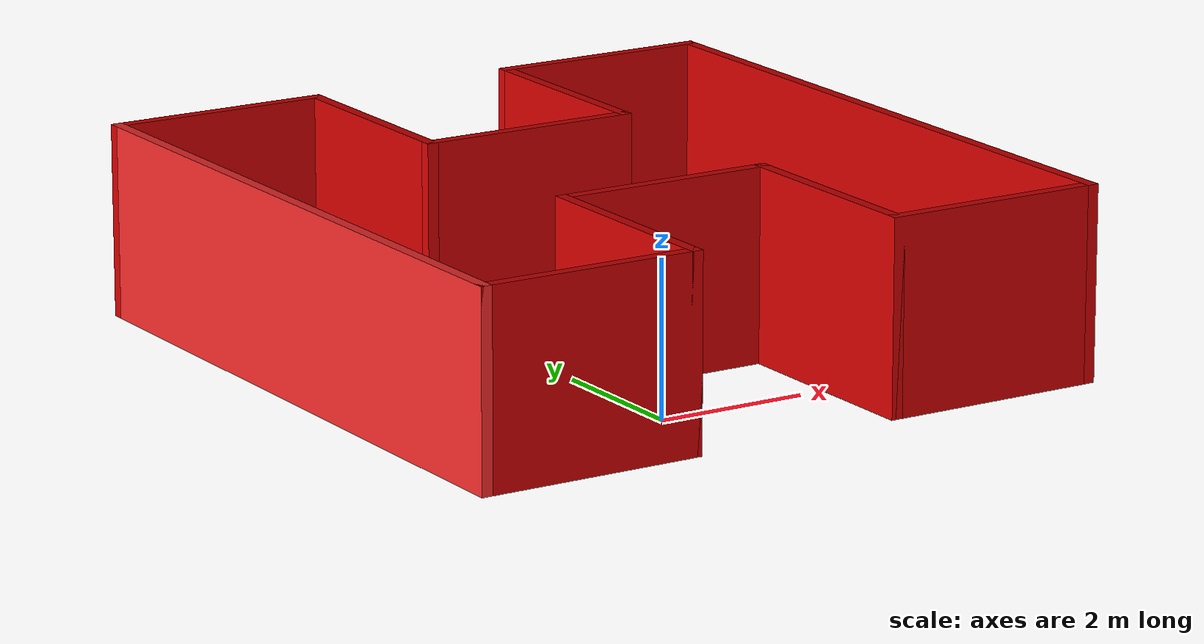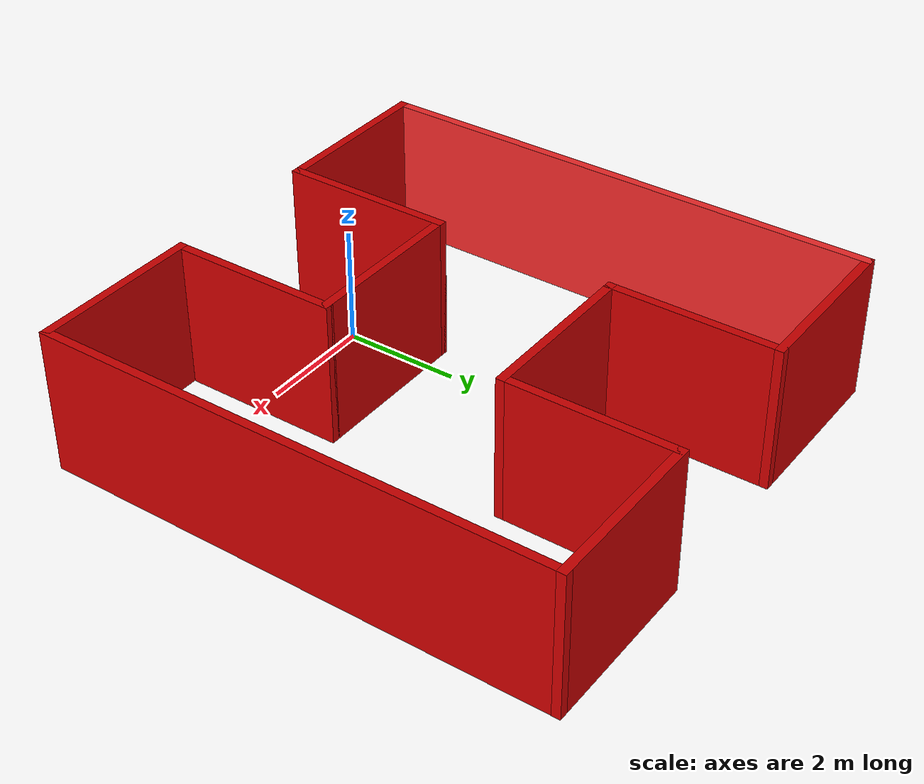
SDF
<?xml version='1.0'?>
<sdf version='1.6'>
  <model name='slambuilding'>
    <pose frame=''>0.965 3.035 0 0 -0 0</pose>
    <link name='Wall_0'>
      <collision name='Wall_0_Collision'>
        <geometry>
          <box>
            <size>3 0.15 2.5</size>
          </box>
        </geometry>
        <pose frame=''>0 0 1.25 0 -0 0</pose>
      </collision>
      <visual name='Wall_0_Visual'>
        <pose frame=''>0 0 1.25 0 -0 0</pose>
        <geometry>
          <box>
            <size>3 0.15 2.5</size>
          </box>
        </geometry>
        <material>
          <script>
            <uri>file://media/materials/scripts/gazebo.material</uri>
            <name>Gazebo/Grey</name>
          </script>
          <ambient>0.8 0 0 1</ambient>
        </material>
        <meta>
          <layer>0</layer>
        </meta>
      </visual>
      <pose frame=''>-2.85 -4.425 0 0 -0 0</pose>
    </link>
    <link name='Wall_1'>
      <collision name='Wall_1_Collision'>
        <geometry>
          <box>
            <size>3 0.15 2.5</size>
          </box>
        </geometry>
        <pose frame=''>0 0 1.25 0 -0 0</pose>
      </collision>
      <visual name='Wall_1_Visual'>
        <pose frame=''>0 0 1.25 0 -0 0</pose>
        <geometry>
          <box>
            <size>3 0.15 2.5</size>
          </box>
        </geometry>
        <material>
          <script>
            <uri>file://media/materials/scripts/gazebo.material</uri>
            <name>Gazebo/Grey</name>
          </script>
          <ambient>0.8 0 0 1</ambient>
        </material>
        <meta>
          <layer>0</layer>
        </meta>
      </visual>
      <pose frame=''>-1.425 -3 0 0 -0 1.5708</pose>
    </link>
    <link name='Wall_10'>
      <collision name='Wall_10_Collision'>
        <geometry>
          <box>
            <size>3 0.15 2.5</size>
          </box>
        </geometry>
        <pose frame=''>0 0 1.25 0 -0 0</pose>
      </collision>
      <visual name='Wall_10_Visual'>
        <pose frame=''>0 0 1.25 0 -0 0</pose>
        <geometry>
          <box>
            <size>3 0.15 2.5</size>
          </box>
        </geometry>
        <material>
          <script>
            <uri>file://media/materials/scripts/gazebo.material</uri>
            <name>Gazebo/Grey</name>
          </script>
          <ambient>0.8 0 0 1</ambient>
        </material>
        <meta>
          <layer>0</layer>
        </meta>
      </visual>
      <pose frame=''>-2.85 4.425 0 0 -0 3.14159</pose>
    </link>
    <link name='Wall_11'>
      <collision name='Wall_11_Collision'>
        <geometry>
          <box>
            <size>9 0.15 2.5</size>
          </box>
        </geometry>
        <pose frame=''>0 0 1.25 0 -0 0</pose>
      </collision>
      <visual name='Wall_11_Visual'>
        <pose frame=''>0 0 1.25 0 -0 0</pose>
        <geometry>
          <box>
            <size>9 0.15 2.5</size>
          </box>
        </geometry>
        <material>
          <script>
            <uri>file://media/materials/scripts/gazebo.material</uri>
            <name>Gazebo/Grey</name>
          </script>
          <ambient>0.937255 0.160784 0.160784 1</ambient>
        </material>
        <meta>
          <layer>0</layer>
        </meta>
      </visual>
      <pose frame=''>-4.275 -0 0 0 -0 -1.5708</pose>
    </link>
    <link name='Wall_2'>
      <collision name='Wall_2_Collision'>
        <geometry>
          <box>
            <size>3 0.15 2.5</size>
          </box>
        </geometry>
        <pose frame=''>0 0 1.25 0 -0 0</pose>
      </collision>
      <visual name='Wall_2_Visual'>
        <pose frame=''>0 0 1.25 0 -0 0</pose>
        <geometry>
          <box>
            <size>3 0.15 2.5</size>
          </box>
        </geometry>
        <material>
          <script>
            <uri>file://media/materials/scripts/gazebo.material</uri>
            <name>Gazebo/Grey</name>
          </script>
          <ambient>0.8 0 0 1</ambient>
        </material>
        <meta>
          <layer>0</layer>
        </meta>
      </visual>
      <pose frame=''>-0 -1.575 0 0 -0 0</pose>
    </link>
    <link name='Wall_3'>
      <collision name='Wall_3_Collision'>
        <geometry>
          <box>
            <size>3 0.15 2.5</size>
          </box>
        </geometry>
        <pose frame=''>0 0 1.25 0 -0 0</pose>
      </collision>
      <visual name='Wall_3_Visual'>
        <pose frame=''>0 0 1.25 0 -0 0</pose>
        <geometry>
          <box>
            <size>3 0.15 2.5</size>
          </box>
        </geometry>
        <material>
          <script>
            <uri>file://media/materials/scripts/gazebo.material</uri>
            <name>Gazebo/Grey</name>
          </script>
          <ambient>0.8 0 0 1</ambient>
        </material>
        <meta>
          <layer>0</layer>
        </meta>
      </visual>
      <pose frame=''>1.425 -3 0 0 -0 -1.5708</pose>
    </link>
    <link name='Wall_4'>
      <collision name='Wall_4_Collision'>
        <geometry>
          <box>
            <size>3 0.15 2.5</size>
          </box>
        </geometry>
        <pose frame=''>0 0 1.25 0 -0 0</pose>
      </collision>
      <visual name='Wall_4_Visual'>
        <pose frame=''>0 0 1.25 0 -0 0</pose>
        <geometry>
          <box>
            <size>3 0.15 2.5</size>
          </box>
        </geometry>
        <material>
          <script>
            <uri>file://media/materials/scripts/gazebo.material</uri>
            <name>Gazebo/Grey</name>
          </script>
          <ambient>0.8 0 0 1</ambient>
        </material>
        <meta>
          <layer>0</layer>
        </meta>
      </visual>
      <pose frame=''>2.85 -4.425 0 0 -0 0</pose>
    </link>
    <link name='Wall_5'>
      <collision name='Wall_5_Collision'>
        <geometry>
          <box>
            <size>9 0.15 2.5</size>
          </box>
        </geometry>
        <pose frame=''>0 0 1.25 0 -0 0</pose>
      </collision>
      <visual name='Wall_5_Visual'>
        <pose frame=''>0 0 1.25 0 -0 0</pose>
        <geometry>
          <box>
            <size>9 0.15 2.5</size>
          </box>
        </geometry>
        <material>
          <script>
            <uri>file://media/materials/scripts/gazebo.material</uri>
            <name>Gazebo/Grey</name>
          </script>
          <ambient>0.8 0 0 1</ambient>
        </material>
        <meta>
          <layer>0</layer>
        </meta>
      </visual>
      <pose frame=''>4.275 -0 0 0 -0 1.5708</pose>
    </link>
    <link name='Wall_6'>
      <collision name='Wall_6_Collision'>
        <geometry>
          <box>
            <size>3 0.15 2.5</size>
          </box>
        </geometry>
        <pose frame=''>0 0 1.25 0 -0 0</pose>
      </collision>
      <visual name='Wall_6_Visual'>
        <pose frame=''>0 0 1.25 0 -0 0</pose>
        <geometry>
          <box>
            <size>3 0.15 2.5</size>
          </box>
        </geometry>
        <material>
          <script>
            <uri>file://media/materials/scripts/gazebo.material</uri>
            <name>Gazebo/Grey</name>
          </script>
          <ambient>0.8 0 0 1</ambient>
        </material>
        <meta>
          <layer>0</layer>
        </meta>
      </visual>
      <pose frame=''>2.85 4.425 0 0 -0 3.14159</pose>
    </link>
    <link name='Wall_7'>
      <collision name='Wall_7_Collision'>
        <geometry>
          <box>
            <size>3 0.15 2.5</size>
          </box>
        </geometry>
        <pose frame=''>0 0 1.25 0 -0 0</pose>
      </collision>
      <visual name='Wall_7_Visual'>
        <pose frame=''>0 0 1.25 0 -0 0</pose>
        <geometry>
          <box>
            <size>3 0.15 2.5</size>
          </box>
        </geometry>
        <material>
          <script>
            <uri>file://media/materials/scripts/gazebo.material</uri>
            <name>Gazebo/Grey</name>
          </script>
          <ambient>0.8 0 0 1</ambient>
        </material>
        <meta>
          <layer>0</layer>
        </meta>
      </visual>
      <pose frame=''>1.425 3 0 0 -0 -1.5708</pose>
    </link>
    <link name='Wall_8'>
      <collision name='Wall_8_Collision'>
        <geometry>
          <box>
            <size>3 0.15 2.5</size>
          </box>
        </geometry>
        <pose frame=''>0 0 1.25 0 -0 0</pose>
      </collision>
      <visual name='Wall_8_Visual'>
        <pose frame=''>0 0 1.25 0 -0 0</pose>
        <geometry>
          <box>
            <size>3 0.15 2.5</size>
          </box>
        </geometry>
        <material>
          <script>
            <uri>file://media/materials/scripts/gazebo.material</uri>
            <name>Gazebo/Grey</name>
          </script>
          <ambient>0.8 0 0 1</ambient>
        </material>
        <meta>
          <layer>0</layer>
        </meta>
      </visual>
      <pose frame=''>-0 1.575 0 0 -0 3.14159</pose>
    </link>
    <link name='Wall_9'>
      <collision name='Wall_9_Collision'>
        <geometry>
          <box>
            <size>3 0.15 2.5</size>
          </box>
        </geometry>
        <pose frame=''>0 0 1.25 0 -0 0</pose>
      </collision>
      <visual name='Wall_9_Visual'>
        <pose frame=''>0 0 1.25 0 -0 0</pose>
        <geometry>
          <box>
            <size>3 0.15 2.5</size>
          </box>
        </geometry>
        <material>
          <script>
            <uri>file://media/materials/scripts/gazebo.material</uri>
            <name>Gazebo/Grey</name>
          </script>
          <ambient>0.8 0 0 1</ambient>
        </material>
        <meta>
          <layer>0</layer>
        </meta>
      </visual>
      <pose frame=''>-1.425 3 0 0 -0 1.5708</pose>
    </link>
    <static>1</static>
  </model>
</sdf>
